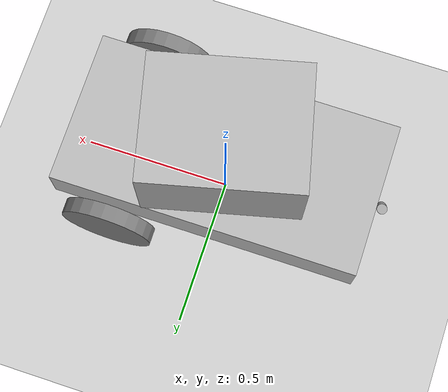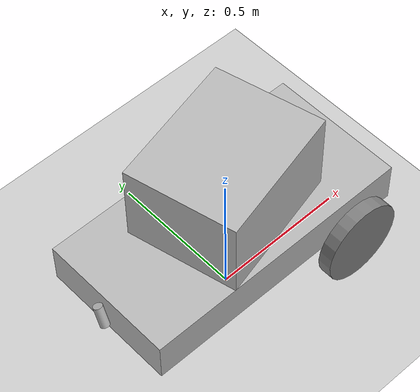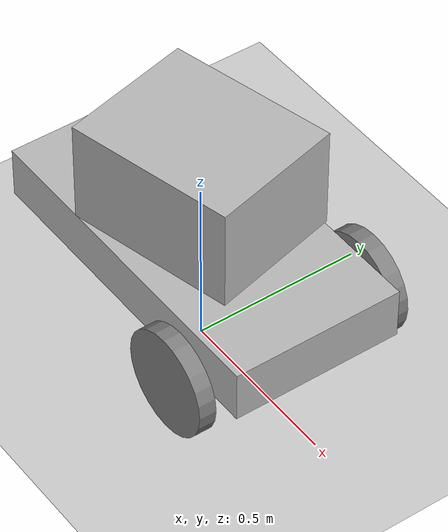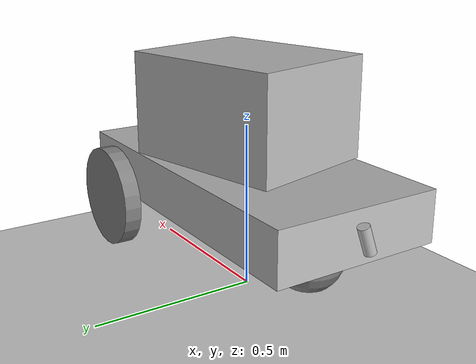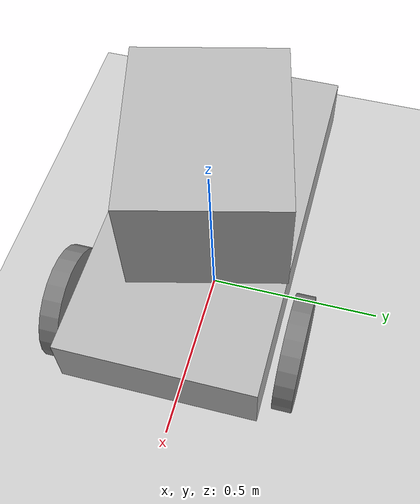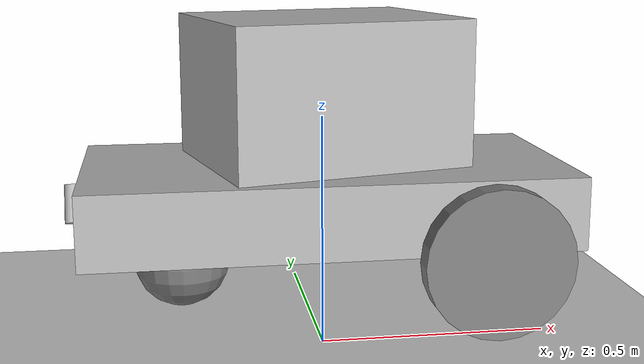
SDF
<?xml version="1.0" ?>

<sdf version="1.6">
  <world name="default">

    <include>
      <uri>model://sun</uri>
    </include>
    <include>
      <uri>model://ground_plane</uri>
    </include>
    <include>
      <pose>0 0 0.33 0 0 0</pose>
      <uri>model://dolly</uri>
    </include>

  </world>
</sdf>

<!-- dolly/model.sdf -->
<sdf version="1.6">
  <model name='Dolly'>
    <pose>0 0 0.225 0 -0 0</pose>

    <link name='chassis'>
      <inertial>
        <mass>1.0</mass>
        <inertia>
          <ixx>0.0227</ixx>
          <ixy>0</ixy>
          <ixz>0</ixz>
          <iyy>0.0852</iyy>
          <iyz>0</iyz>
          <izz>0.1041</izz>
        </inertia>
      </inertial>
      <visual name='visual'>
        <geometry>
          <box>
            <size>1.0 0.5 0.15</size>
          </box>
        </geometry>
        <material>
          <script>
            <uri>model://dolly/materials/scripts</uri>
            <uri>model://dolly/materials/textures</uri>
            <name>Dolly/fur</name>
          </script>
        </material>
      </visual>
      <visual name="box">
        <pose>0 0 0.08 0 0 0.24</pose>
        <geometry>
          <mesh>
            <uri>model://cardboard_box/meshes/cardboard_box.dae</uri>
            <scale>1.25931896 1.007455168 0.755591376</scale>
          </mesh>
        </geometry>
      </visual>
      <sensor name="sensor_gpu_ray" type="gpu_ray">
        <pose>0.5 0 0 0 0 0</pose>
        <ray>
          <scan>
            <horizontal>
              <samples>300</samples>
              <resolution>1.0</resolution>
              <min_angle>-0.5236</min_angle>
              <max_angle>0.5236</max_angle>
            </horizontal>
          </scan>
          <range>
            <min>0.05</min>
            <max>10.0</max>
          </range>
        </ray>
        <always_on>true</always_on>
        <visualize>true</visualize>
        <update_rate>1.0</update_rate>
        <plugin name="laser" filename="libgazebo_ros_ray_sensor.so">
          <ros>
            <namespace>/dolly</namespace>
            <argument>~/out:=laser_scan</argument>
          </ros>
          <output_type>sensor_msgs/LaserScan</output_type>
        </plugin>
      </sensor>
    </link>
    <link name='caster'>
      <pose>-0.3 0 -0.125 0 0 0</pose>
      <inertial>
        <mass>0.0415553</mass>
        <inertia>
          <ixx>7.97741e-05</ixx>
          <ixy>0</ixy>
          <ixz>0</ixz>
          <iyy>7.97741e-05</iyy>
          <iyz>0</iyz>
          <izz>7.97741e-05</izz>
        </inertia>
      </inertial>
      <visual name='visual'>
        <geometry>
          <sphere>
            <radius>0.1</radius>
          </sphere>
        </geometry>
        <material>
          <diffuse>0.5 0.5 0.5 1</diffuse>
          <ambient>0 0 0 1</ambient>
          <specular>1 1 1 1</specular>
          <emissive>0 0 0 1</emissive>
        </material>
      </visual>
      <collision name='collision'>
        <geometry>
          <sphere>
            <radius>0.1</radius>
          </sphere>
        </geometry>
        <surface>
          <friction>
            <ode>
              <mu>1</mu>
              <mu2>1</mu2>
              <slip1>0</slip1>
              <slip2>0</slip2>
            </ode>
          </friction>
          <contact>
            <ode>
              <soft_cfm>0</soft_cfm>
              <soft_erp>0.2</soft_erp>
              <kp>1e+13</kp>
              <kd>1</kd>
              <max_vel>0.01</max_vel>
              <min_depth>0</min_depth>
            </ode>
          </contact>
        </surface>
      </collision>
    </link>

    <link name='left_wheel'>
      <pose>0.3 0.3 -0.075 -1.5707 0 0</pose>
      <inertial>
        <mass>0.5</mass>
        <inertia>
          <ixx>0.0029</ixx>
          <ixy>0</ixy>
          <ixz>0</ixz>
          <iyy>0.0029</iyy>
          <iyz>0</iyz>
          <izz>0.0056</izz>
        </inertia>
      </inertial>
      <visual name='visual'>
        <geometry>
          <cylinder>
            <radius>0.15</radius>
            <length>0.05</length>
          </cylinder>
        </geometry>
        <material>
          <diffuse>0.5 0.5 0.5 1</diffuse>
          <ambient>0 0 0 1</ambient>
          <specular>1 1 1 1</specular>
          <emissive>0 0 0 1</emissive>
        </material>
      </visual>
      <collision name='collision'>
        <geometry>
          <sphere>
            <radius>0.15</radius>
          </sphere>
        </geometry>
        <surface>
          <friction>
            <ode>
              <mu>1</mu>
              <mu2>1</mu2>
              <slip1>0</slip1>
              <slip2>0</slip2>
            </ode>
          </friction>
          <contact>
            <ode>
              <soft_cfm>0</soft_cfm>
              <soft_erp>0.2</soft_erp>
              <kp>1e+13</kp>
              <kd>1</kd>
              <max_vel>0.01</max_vel>
              <min_depth>0.01</min_depth>
            </ode>
          </contact>
        </surface>
      </collision>
    </link>

    <link name='right_wheel'>
      <pose>0.3 -0.3 -0.075 -1.5707 0 0</pose>
      <inertial>
        <mass>0.5</mass>
        <inertia>
          <ixx>0.0029</ixx>
          <ixy>0</ixy>
          <ixz>0</ixz>
          <iyy>0.0029</iyy>
          <iyz>0</iyz>
          <izz>0.0056</izz>
        </inertia>
      </inertial>
      <visual name='visual'>
        <geometry>
          <cylinder>
            <radius>0.15</radius>
            <length>0.05</length>
          </cylinder>
        </geometry>
        <material>
          <diffuse>0.5 0.5 0.5 1</diffuse>
          <ambient>0 0 0 1</ambient>
          <specular>1 1 1 1</specular>
          <emissive>0 0 0 1</emissive>
        </material>
      </visual>
      <collision name='collision'>
        <geometry>
          <sphere>
            <radius>0.15</radius>
          </sphere>
        </geometry>
        <surface>
          <friction>
            <ode>
              <mu>1</mu>
              <mu2>1</mu2>
              <slip1>0</slip1>
              <slip2>0</slip2>
            </ode>
          </friction>
          <contact>
            <ode>
              <soft_cfm>0</soft_cfm>
              <soft_erp>0.2</soft_erp>
              <kp>1e+13</kp>
              <kd>1</kd>
              <max_vel>0.01</max_vel>
              <min_depth>0.01</min_depth>
            </ode>
          </contact>
        </surface>
      </collision>
    </link>

    <link name='tail'>
      <pose>-0.52 0 0 -0.344828 0 0</pose>
      <inertial>
        <mass>0.0254232</mass>
        <inertia>
          <ixx>1.528e-05</ixx>
          <ixy>0</ixy>
          <ixz>0</ixz>
          <iyy>1.528e-05</iyy>
          <iyz>0</iyz>
          <izz>3.45e-06</izz>
        </inertia>
        <pose frame=''>0 0 -0.04 0 -0 0</pose>
      </inertial>
      <visual name='visual'>
        <geometry>
          <cylinder>
            <radius>0.016468</radius>
            <length>0.08</length>
          </cylinder>
        </geometry>
        <material>
          <script>
            <uri>model://dolly/materials/scripts</uri>
            <uri>model://dolly/materials/textures</uri>
            <name>Dolly/fur</name>
          </script>
        </material>
      </visual>
    </link>

    <joint name='left_wheel_joint' type='revolute'>
      <parent>chassis</parent>
      <child>left_wheel</child>
      <axis>
        <xyz>0 0 1</xyz>
        <limit>
          <lower>-1.79769e+308</lower>
          <upper>1.79769e+308</upper>
        </limit>
      </axis>
    </joint>

    <joint name='right_wheel_joint' type='revolute'>
      <parent>chassis</parent>
      <child>right_wheel</child>
      <axis>
        <xyz>0 0 1</xyz>
        <limit>
          <lower>-1.79769e+308</lower>
          <upper>1.79769e+308</upper>
        </limit>
      </axis>
    </joint>

    <joint name='caster_wheel' type='ball'>
      <parent>chassis</parent>
      <child>caster</child>
    </joint>

    <joint name='tail_joint' type='revolute'>
      <parent>chassis</parent>
      <child>tail</child>
      <pose>0 0 0.04 0 -0 0</pose>
      <axis>
        <xyz>1 0 0</xyz>
        <use_parent_model_frame>0</use_parent_model_frame>
        <limit>
          <lower>-1.79769e+308</lower>
          <upper>1.79769e+308</upper>
          <effort>-1</effort>
          <velocity>-1</velocity>
        </limit>
        <dynamics>
          <spring_reference>0</spring_reference>
          <spring_stiffness>0</spring_stiffness>
          <damping>0</damping>
          <friction>0</friction>
        </dynamics>
      </axis>
      <physics>
        <ode>
          <limit>
            <cfm>0</cfm>
            <erp>0.2</erp>
          </limit>
          <suspension>
            <cfm>0</cfm>
            <erp>0.2</erp>
          </suspension>
        </ode>
      </physics>
    </joint>

    <plugin name='diff_drive' filename='libgazebo_ros_diff_drive.so'>

      <ros>
        <namespace>/dolly</namespace>
      </ros>

      <!-- wheels -->
      <left_joint>left_wheel_joint</left_joint>
      <right_joint>right_wheel_joint</right_joint>

      <!-- kinematics -->
      <wheel_separation>1.25</wheel_separation>
      <wheel_diameter>0.3</wheel_diameter>

      <!-- limits -->
      <max_wheel_torque>20</max_wheel_torque>
      <max_wheel_acceleration>1.0</max_wheel_acceleration>

      <!-- output -->
      <publish_odom>true</publish_odom>
      <publish_odom_tf>true</publish_odom_tf>

      <odometry_frame>odom_demo</odometry_frame>
      <robot_base_frame>chassis</robot_base_frame>

    </plugin>

  </model>
</sdf>
